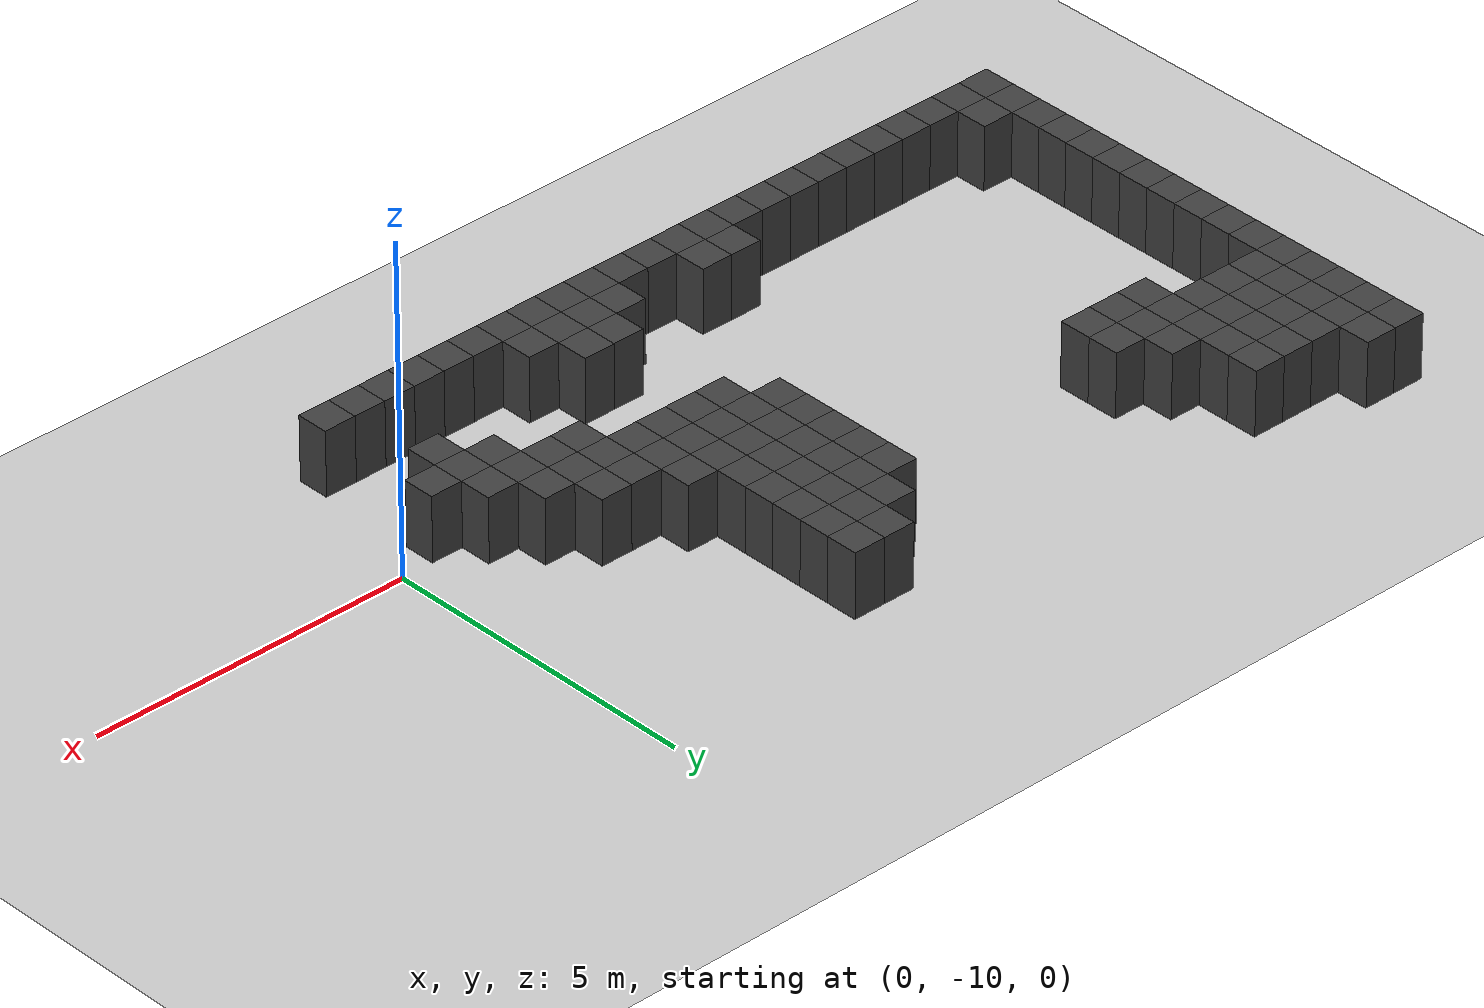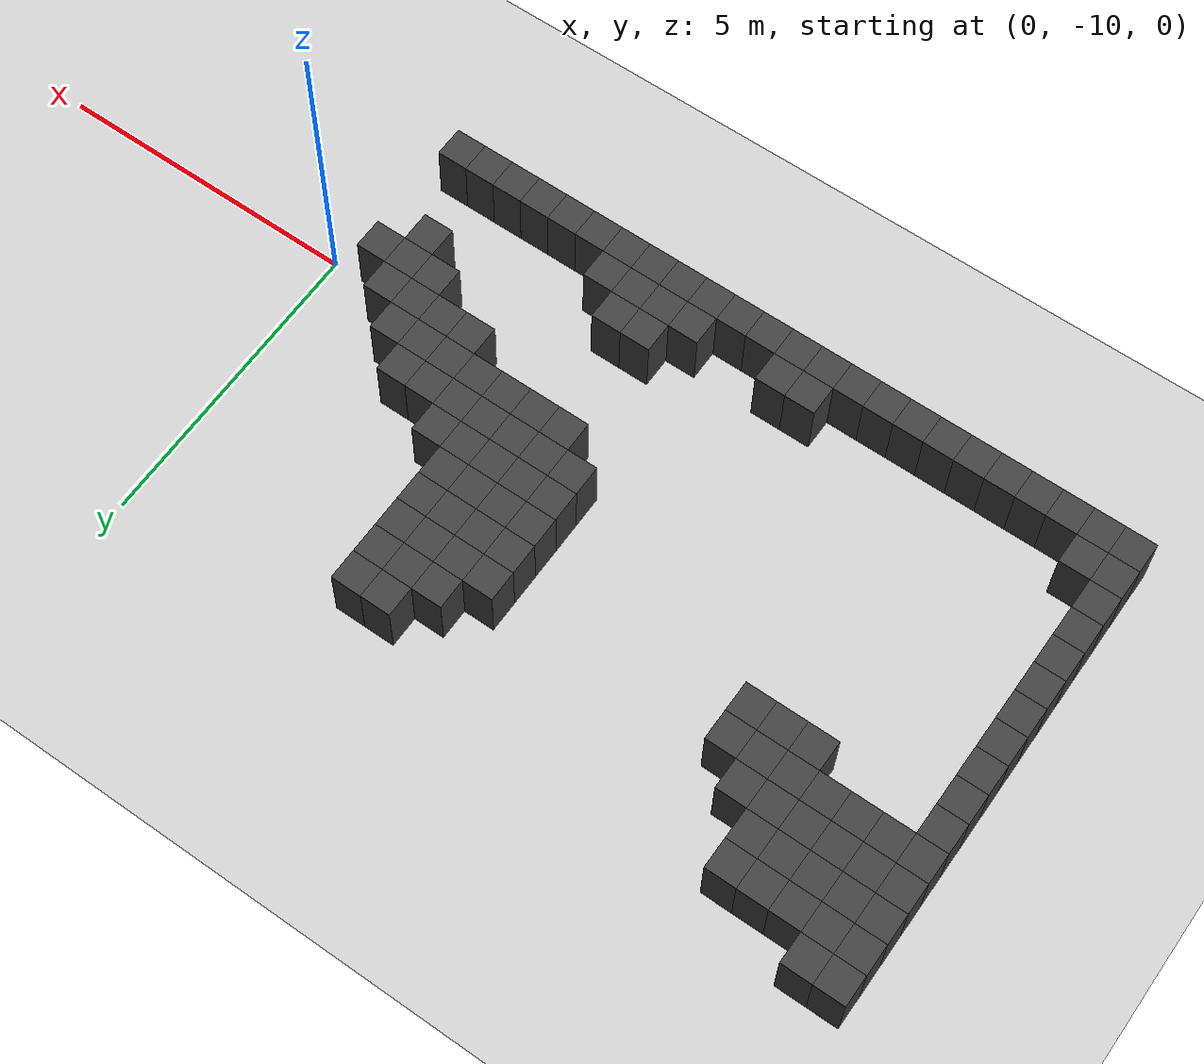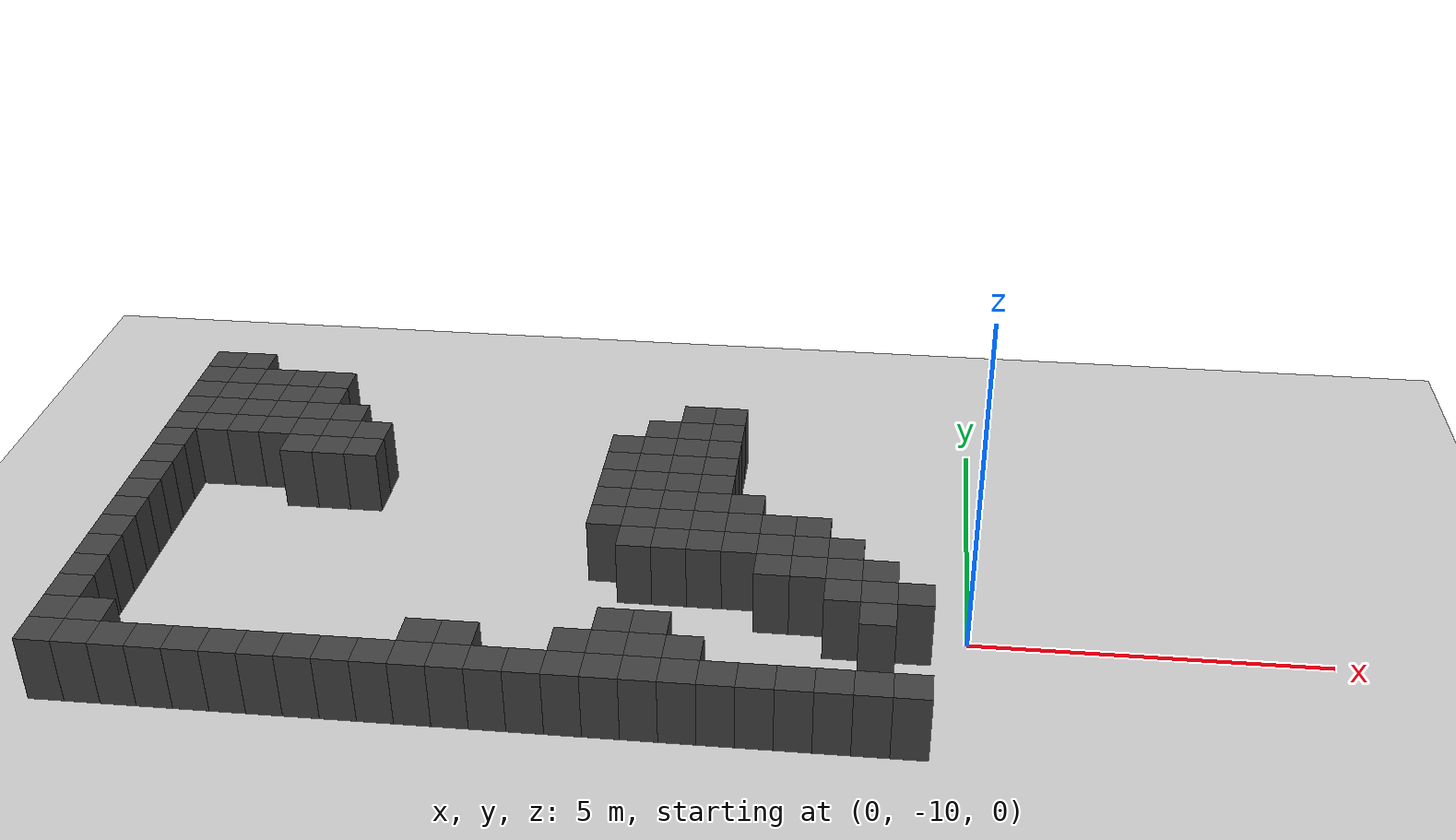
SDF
<sdf version="1.7">
 <world name="map_9152">
  <model name="ground_plane">
   <static>true</static>
   <link name="link">
    <collision name="collision">
     <geometry><plane><normal>0 0 1</normal><size>200 200</size></plane></geometry>
    </collision>
    <visual name="visual">
     <geometry><plane><normal>0 0 1</normal><size>200 200</size></plane></geometry>
     <material><ambient>0.8 0.8 0.8 1</ambient><diffuse>0.8 0.8 0.8 1</diffuse></material>
    </visual>
   </link>
  </model>
  <model name="maze_environment">
   <static>true</static>
   <link name="wall_527">
    <pose>-12.250 -4.750 0.500 0 0 0</pose>
    <collision name="col"><geometry><box><size>0.5 0.5 1.0</size></box></geometry></collision>
    <visual name="vis">
     <geometry><box><size>0.5 0.5 1.0</size></box></geometry>
     <material><ambient>0.15 0.15 0.15 1</ambient><diffuse>0.25 0.25 0.25 1</diffuse></material>
    </visual>
   </link>
   <link name="wall_528">
    <pose>-11.750 -4.750 0.500 0 0 0</pose>
    <collision name="col"><geometry><box><size>0.5 0.5 1.0</size></box></geometry></collision>
    <visual name="vis">
     <geometry><box><size>0.5 0.5 1.0</size></box></geometry>
     <material><ambient>0.15 0.15 0.15 1</ambient><diffuse>0.25 0.25 0.25 1</diffuse></material>
    </visual>
   </link>
   <link name="wall_542">
    <pose>-12.250 -5.250 0.500 0 0 0</pose>
    <collision name="col"><geometry><box><size>0.5 0.5 1.0</size></box></geometry></collision>
    <visual name="vis">
     <geometry><box><size>0.5 0.5 1.0</size></box></geometry>
     <material><ambient>0.15 0.15 0.15 1</ambient><diffuse>0.25 0.25 0.25 1</diffuse></material>
    </visual>
   </link>
   <link name="wall_543">
    <pose>-11.750 -5.250 0.500 0 0 0</pose>
    <collision name="col"><geometry><box><size>0.5 0.5 1.0</size></box></geometry></collision>
    <visual name="vis">
     <geometry><box><size>0.5 0.5 1.0</size></box></geometry>
     <material><ambient>0.15 0.15 0.15 1</ambient><diffuse>0.25 0.25 0.25 1</diffuse></material>
    </visual>
   </link>
   <link name="wall_544">
    <pose>-11.250 -5.250 0.500 0 0 0</pose>
    <collision name="col"><geometry><box><size>0.5 0.5 1.0</size></box></geometry></collision>
    <visual name="vis">
     <geometry><box><size>0.5 0.5 1.0</size></box></geometry>
     <material><ambient>0.15 0.15 0.15 1</ambient><diffuse>0.25 0.25 0.25 1</diffuse></material>
    </visual>
   </link>
   <link name="wall_545">
    <pose>-10.750 -5.250 0.500 0 0 0</pose>
    <collision name="col"><geometry><box><size>0.5 0.5 1.0</size></box></geometry></collision>
    <visual name="vis">
     <geometry><box><size>0.5 0.5 1.0</size></box></geometry>
     <material><ambient>0.15 0.15 0.15 1</ambient><diffuse>0.25 0.25 0.25 1</diffuse></material>
    </visual>
   </link>
   <link name="wall_546">
    <pose>-10.250 -5.250 0.500 0 0 0</pose>
    <collision name="col"><geometry><box><size>0.5 0.5 1.0</size></box></geometry></collision>
    <visual name="vis">
     <geometry><box><size>0.5 0.5 1.0</size></box></geometry>
     <material><ambient>0.15 0.15 0.15 1</ambient><diffuse>0.25 0.25 0.25 1</diffuse></material>
    </visual>
   </link>
   <link name="wall_559">
    <pose>-12.250 -5.750 0.500 0 0 0</pose>
    <collision name="col"><geometry><box><size>0.5 0.5 1.0</size></box></geometry></collision>
    <visual name="vis">
     <geometry><box><size>0.5 0.5 1.0</size></box></geometry>
     <material><ambient>0.15 0.15 0.15 1</ambient><diffuse>0.25 0.25 0.25 1</diffuse></material>
    </visual>
   </link>
   <link name="wall_560">
    <pose>-11.750 -5.750 0.500 0 0 0</pose>
    <collision name="col"><geometry><box><size>0.5 0.5 1.0</size></box></geometry></collision>
    <visual name="vis">
     <geometry><box><size>0.5 0.5 1.0</size></box></geometry>
     <material><ambient>0.15 0.15 0.15 1</ambient><diffuse>0.25 0.25 0.25 1</diffuse></material>
    </visual>
   </link>
   <link name="wall_561">
    <pose>-11.250 -5.750 0.500 0 0 0</pose>
    <collision name="col"><geometry><box><size>0.5 0.5 1.0</size></box></geometry></collision>
    <visual name="vis">
     <geometry><box><size>0.5 0.5 1.0</size></box></geometry>
     <material><ambient>0.15 0.15 0.15 1</ambient><diffuse>0.25 0.25 0.25 1</diffuse></material>
    </visual>
   </link>
   <link name="wall_562">
    <pose>-10.750 -5.750 0.500 0 0 0</pose>
    <collision name="col"><geometry><box><size>0.5 0.5 1.0</size></box></geometry></collision>
    <visual name="vis">
     <geometry><box><size>0.5 0.5 1.0</size></box></geometry>
     <material><ambient>0.15 0.15 0.15 1</ambient><diffuse>0.25 0.25 0.25 1</diffuse></material>
    </visual>
   </link>
   <link name="wall_563">
    <pose>-10.250 -5.750 0.500 0 0 0</pose>
    <collision name="col"><geometry><box><size>0.5 0.5 1.0</size></box></geometry></collision>
    <visual name="vis">
     <geometry><box><size>0.5 0.5 1.0</size></box></geometry>
     <material><ambient>0.15 0.15 0.15 1</ambient><diffuse>0.25 0.25 0.25 1</diffuse></material>
    </visual>
   </link>
   <link name="wall_564">
    <pose>-4.250 -5.750 0.500 0 0 0</pose>
    <collision name="col"><geometry><box><size>0.5 0.5 1.0</size></box></geometry></collision>
    <visual name="vis">
     <geometry><box><size>0.5 0.5 1.0</size></box></geometry>
     <material><ambient>0.15 0.15 0.15 1</ambient><diffuse>0.25 0.25 0.25 1</diffuse></material>
    </visual>
   </link>
   <link name="wall_565">
    <pose>-3.750 -5.750 0.500 0 0 0</pose>
    <collision name="col"><geometry><box><size>0.5 0.5 1.0</size></box></geometry></collision>
    <visual name="vis">
     <geometry><box><size>0.5 0.5 1.0</size></box></geometry>
     <material><ambient>0.15 0.15 0.15 1</ambient><diffuse>0.25 0.25 0.25 1</diffuse></material>
    </visual>
   </link>
   <link name="wall_576">
    <pose>-12.250 -6.250 0.500 0 0 0</pose>
    <collision name="col"><geometry><box><size>0.5 0.5 1.0</size></box></geometry></collision>
    <visual name="vis">
     <geometry><box><size>0.5 0.5 1.0</size></box></geometry>
     <material><ambient>0.15 0.15 0.15 1</ambient><diffuse>0.25 0.25 0.25 1</diffuse></material>
    </visual>
   </link>
   <link name="wall_577">
    <pose>-11.750 -6.250 0.500 0 0 0</pose>
    <collision name="col"><geometry><box><size>0.5 0.5 1.0</size></box></geometry></collision>
    <visual name="vis">
     <geometry><box><size>0.5 0.5 1.0</size></box></geometry>
     <material><ambient>0.15 0.15 0.15 1</ambient><diffuse>0.25 0.25 0.25 1</diffuse></material>
    </visual>
   </link>
   <link name="wall_578">
    <pose>-11.250 -6.250 0.500 0 0 0</pose>
    <collision name="col"><geometry><box><size>0.5 0.5 1.0</size></box></geometry></collision>
    <visual name="vis">
     <geometry><box><size>0.5 0.5 1.0</size></box></geometry>
     <material><ambient>0.15 0.15 0.15 1</ambient><diffuse>0.25 0.25 0.25 1</diffuse></material>
    </visual>
   </link>
   <link name="wall_579">
    <pose>-10.750 -6.250 0.500 0 0 0</pose>
    <collision name="col"><geometry><box><size>0.5 0.5 1.0</size></box></geometry></collision>
    <visual name="vis">
     <geometry><box><size>0.5 0.5 1.0</size></box></geometry>
     <material><ambient>0.15 0.15 0.15 1</ambient><diffuse>0.25 0.25 0.25 1</diffuse></material>
    </visual>
   </link>
   <link name="wall_580">
    <pose>-10.250 -6.250 0.500 0 0 0</pose>
    <collision name="col"><geometry><box><size>0.5 0.5 1.0</size></box></geometry></collision>
    <visual name="vis">
     <geometry><box><size>0.5 0.5 1.0</size></box></geometry>
     <material><ambient>0.15 0.15 0.15 1</ambient><diffuse>0.25 0.25 0.25 1</diffuse></material>
    </visual>
   </link>
   <link name="wall_581">
    <pose>-9.750 -6.250 0.500 0 0 0</pose>
    <collision name="col"><geometry><box><size>0.5 0.5 1.0</size></box></geometry></collision>
    <visual name="vis">
     <geometry><box><size>0.5 0.5 1.0</size></box></geometry>
     <material><ambient>0.15 0.15 0.15 1</ambient><diffuse>0.25 0.25 0.25 1</diffuse></material>
    </visual>
   </link>
   <link name="wall_582">
    <pose>-4.750 -6.250 0.500 0 0 0</pose>
    <collision name="col"><geometry><box><size>0.5 0.5 1.0</size></box></geometry></collision>
    <visual name="vis">
     <geometry><box><size>0.5 0.5 1.0</size></box></geometry>
     <material><ambient>0.15 0.15 0.15 1</ambient><diffuse>0.25 0.25 0.25 1</diffuse></material>
    </visual>
   </link>
   <link name="wall_583">
    <pose>-4.250 -6.250 0.500 0 0 0</pose>
    <collision name="col"><geometry><box><size>0.5 0.5 1.0</size></box></geometry></collision>
    <visual name="vis">
     <geometry><box><size>0.5 0.5 1.0</size></box></geometry>
     <material><ambient>0.15 0.15 0.15 1</ambient><diffuse>0.25 0.25 0.25 1</diffuse></material>
    </visual>
   </link>
   <link name="wall_584">
    <pose>-3.750 -6.250 0.500 0 0 0</pose>
    <collision name="col"><geometry><box><size>0.5 0.5 1.0</size></box></geometry></collision>
    <visual name="vis">
     <geometry><box><size>0.5 0.5 1.0</size></box></geometry>
     <material><ambient>0.15 0.15 0.15 1</ambient><diffuse>0.25 0.25 0.25 1</diffuse></material>
    </visual>
   </link>
   <link name="wall_595">
    <pose>-12.250 -6.750 0.500 0 0 0</pose>
    <collision name="col"><geometry><box><size>0.5 0.5 1.0</size></box></geometry></collision>
    <visual name="vis">
     <geometry><box><size>0.5 0.5 1.0</size></box></geometry>
     <material><ambient>0.15 0.15 0.15 1</ambient><diffuse>0.25 0.25 0.25 1</diffuse></material>
    </visual>
   </link>
   <link name="wall_596">
    <pose>-11.750 -6.750 0.500 0 0 0</pose>
    <collision name="col"><geometry><box><size>0.5 0.5 1.0</size></box></geometry></collision>
    <visual name="vis">
     <geometry><box><size>0.5 0.5 1.0</size></box></geometry>
     <material><ambient>0.15 0.15 0.15 1</ambient><diffuse>0.25 0.25 0.25 1</diffuse></material>
    </visual>
   </link>
   <link name="wall_597">
    <pose>-11.250 -6.750 0.500 0 0 0</pose>
    <collision name="col"><geometry><box><size>0.5 0.5 1.0</size></box></geometry></collision>
    <visual name="vis">
     <geometry><box><size>0.5 0.5 1.0</size></box></geometry>
     <material><ambient>0.15 0.15 0.15 1</ambient><diffuse>0.25 0.25 0.25 1</diffuse></material>
    </visual>
   </link>
   <link name="wall_598">
    <pose>-10.750 -6.750 0.500 0 0 0</pose>
    <collision name="col"><geometry><box><size>0.5 0.5 1.0</size></box></geometry></collision>
    <visual name="vis">
     <geometry><box><size>0.5 0.5 1.0</size></box></geometry>
     <material><ambient>0.15 0.15 0.15 1</ambient><diffuse>0.25 0.25 0.25 1</diffuse></material>
    </visual>
   </link>
   <link name="wall_599">
    <pose>-10.250 -6.750 0.500 0 0 0</pose>
    <collision name="col"><geometry><box><size>0.5 0.5 1.0</size></box></geometry></collision>
    <visual name="vis">
     <geometry><box><size>0.5 0.5 1.0</size></box></geometry>
     <material><ambient>0.15 0.15 0.15 1</ambient><diffuse>0.25 0.25 0.25 1</diffuse></material>
    </visual>
   </link>
   <link name="wall_600">
    <pose>-9.750 -6.750 0.500 0 0 0</pose>
    <collision name="col"><geometry><box><size>0.5 0.5 1.0</size></box></geometry></collision>
    <visual name="vis">
     <geometry><box><size>0.5 0.5 1.0</size></box></geometry>
     <material><ambient>0.15 0.15 0.15 1</ambient><diffuse>0.25 0.25 0.25 1</diffuse></material>
    </visual>
   </link>
   <link name="wall_601">
    <pose>-9.250 -6.750 0.500 0 0 0</pose>
    <collision name="col"><geometry><box><size>0.5 0.5 1.0</size></box></geometry></collision>
    <visual name="vis">
     <geometry><box><size>0.5 0.5 1.0</size></box></geometry>
     <material><ambient>0.15 0.15 0.15 1</ambient><diffuse>0.25 0.25 0.25 1</diffuse></material>
    </visual>
   </link>
   <link name="wall_602">
    <pose>-5.250 -6.750 0.500 0 0 0</pose>
    <collision name="col"><geometry><box><size>0.5 0.5 1.0</size></box></geometry></collision>
    <visual name="vis">
     <geometry><box><size>0.5 0.5 1.0</size></box></geometry>
     <material><ambient>0.15 0.15 0.15 1</ambient><diffuse>0.25 0.25 0.25 1</diffuse></material>
    </visual>
   </link>
   <link name="wall_603">
    <pose>-4.750 -6.750 0.500 0 0 0</pose>
    <collision name="col"><geometry><box><size>0.5 0.5 1.0</size></box></geometry></collision>
    <visual name="vis">
     <geometry><box><size>0.5 0.5 1.0</size></box></geometry>
     <material><ambient>0.15 0.15 0.15 1</ambient><diffuse>0.25 0.25 0.25 1</diffuse></material>
    </visual>
   </link>
   <link name="wall_604">
    <pose>-4.250 -6.750 0.500 0 0 0</pose>
    <collision name="col"><geometry><box><size>0.5 0.5 1.0</size></box></geometry></collision>
    <visual name="vis">
     <geometry><box><size>0.5 0.5 1.0</size></box></geometry>
     <material><ambient>0.15 0.15 0.15 1</ambient><diffuse>0.25 0.25 0.25 1</diffuse></material>
    </visual>
   </link>
   <link name="wall_605">
    <pose>-3.750 -6.750 0.500 0 0 0</pose>
    <collision name="col"><geometry><box><size>0.5 0.5 1.0</size></box></geometry></collision>
    <visual name="vis">
     <geometry><box><size>0.5 0.5 1.0</size></box></geometry>
     <material><ambient>0.15 0.15 0.15 1</ambient><diffuse>0.25 0.25 0.25 1</diffuse></material>
    </visual>
   </link>
   <link name="wall_616">
    <pose>-12.250 -7.250 0.500 0 0 0</pose>
    <collision name="col"><geometry><box><size>0.5 0.5 1.0</size></box></geometry></collision>
    <visual name="vis">
     <geometry><box><size>0.5 0.5 1.0</size></box></geometry>
     <material><ambient>0.15 0.15 0.15 1</ambient><diffuse>0.25 0.25 0.25 1</diffuse></material>
    </visual>
   </link>
   <link name="wall_617">
    <pose>-10.250 -7.250 0.500 0 0 0</pose>
    <collision name="col"><geometry><box><size>0.5 0.5 1.0</size></box></geometry></collision>
    <visual name="vis">
     <geometry><box><size>0.5 0.5 1.0</size></box></geometry>
     <material><ambient>0.15 0.15 0.15 1</ambient><diffuse>0.25 0.25 0.25 1</diffuse></material>
    </visual>
   </link>
   <link name="wall_618">
    <pose>-9.750 -7.250 0.500 0 0 0</pose>
    <collision name="col"><geometry><box><size>0.5 0.5 1.0</size></box></geometry></collision>
    <visual name="vis">
     <geometry><box><size>0.5 0.5 1.0</size></box></geometry>
     <material><ambient>0.15 0.15 0.15 1</ambient><diffuse>0.25 0.25 0.25 1</diffuse></material>
    </visual>
   </link>
   <link name="wall_619">
    <pose>-9.250 -7.250 0.500 0 0 0</pose>
    <collision name="col"><geometry><box><size>0.5 0.5 1.0</size></box></geometry></collision>
    <visual name="vis">
     <geometry><box><size>0.5 0.5 1.0</size></box></geometry>
     <material><ambient>0.15 0.15 0.15 1</ambient><diffuse>0.25 0.25 0.25 1</diffuse></material>
    </visual>
   </link>
   <link name="wall_620">
    <pose>-5.250 -7.250 0.500 0 0 0</pose>
    <collision name="col"><geometry><box><size>0.5 0.5 1.0</size></box></geometry></collision>
    <visual name="vis">
     <geometry><box><size>0.5 0.5 1.0</size></box></geometry>
     <material><ambient>0.15 0.15 0.15 1</ambient><diffuse>0.25 0.25 0.25 1</diffuse></material>
    </visual>
   </link>
   <link name="wall_621">
    <pose>-4.750 -7.250 0.500 0 0 0</pose>
    <collision name="col"><geometry><box><size>0.5 0.5 1.0</size></box></geometry></collision>
    <visual name="vis">
     <geometry><box><size>0.5 0.5 1.0</size></box></geometry>
     <material><ambient>0.15 0.15 0.15 1</ambient><diffuse>0.25 0.25 0.25 1</diffuse></material>
    </visual>
   </link>
   <link name="wall_622">
    <pose>-4.250 -7.250 0.500 0 0 0</pose>
    <collision name="col"><geometry><box><size>0.5 0.5 1.0</size></box></geometry></collision>
    <visual name="vis">
     <geometry><box><size>0.5 0.5 1.0</size></box></geometry>
     <material><ambient>0.15 0.15 0.15 1</ambient><diffuse>0.25 0.25 0.25 1</diffuse></material>
    </visual>
   </link>
   <link name="wall_623">
    <pose>-3.750 -7.250 0.500 0 0 0</pose>
    <collision name="col"><geometry><box><size>0.5 0.5 1.0</size></box></geometry></collision>
    <visual name="vis">
     <geometry><box><size>0.5 0.5 1.0</size></box></geometry>
     <material><ambient>0.15 0.15 0.15 1</ambient><diffuse>0.25 0.25 0.25 1</diffuse></material>
    </visual>
   </link>
   <link name="wall_635">
    <pose>-12.250 -7.750 0.500 0 0 0</pose>
    <collision name="col"><geometry><box><size>0.5 0.5 1.0</size></box></geometry></collision>
    <visual name="vis">
     <geometry><box><size>0.5 0.5 1.0</size></box></geometry>
     <material><ambient>0.15 0.15 0.15 1</ambient><diffuse>0.25 0.25 0.25 1</diffuse></material>
    </visual>
   </link>
   <link name="wall_636">
    <pose>-5.250 -7.750 0.500 0 0 0</pose>
    <collision name="col"><geometry><box><size>0.5 0.5 1.0</size></box></geometry></collision>
    <visual name="vis">
     <geometry><box><size>0.5 0.5 1.0</size></box></geometry>
     <material><ambient>0.15 0.15 0.15 1</ambient><diffuse>0.25 0.25 0.25 1</diffuse></material>
    </visual>
   </link>
   <link name="wall_637">
    <pose>-4.750 -7.750 0.500 0 0 0</pose>
    <collision name="col"><geometry><box><size>0.5 0.5 1.0</size></box></geometry></collision>
    <visual name="vis">
     <geometry><box><size>0.5 0.5 1.0</size></box></geometry>
     <material><ambient>0.15 0.15 0.15 1</ambient><diffuse>0.25 0.25 0.25 1</diffuse></material>
    </visual>
   </link>
   <link name="wall_638">
    <pose>-4.250 -7.750 0.500 0 0 0</pose>
    <collision name="col"><geometry><box><size>0.5 0.5 1.0</size></box></geometry></collision>
    <visual name="vis">
     <geometry><box><size>0.5 0.5 1.0</size></box></geometry>
     <material><ambient>0.15 0.15 0.15 1</ambient><diffuse>0.25 0.25 0.25 1</diffuse></material>
    </visual>
   </link>
   <link name="wall_639">
    <pose>-3.750 -7.750 0.500 0 0 0</pose>
    <collision name="col"><geometry><box><size>0.5 0.5 1.0</size></box></geometry></collision>
    <visual name="vis">
     <geometry><box><size>0.5 0.5 1.0</size></box></geometry>
     <material><ambient>0.15 0.15 0.15 1</ambient><diffuse>0.25 0.25 0.25 1</diffuse></material>
    </visual>
   </link>
   <link name="wall_649">
    <pose>-12.250 -8.250 0.500 0 0 0</pose>
    <collision name="col"><geometry><box><size>0.5 0.5 1.0</size></box></geometry></collision>
    <visual name="vis">
     <geometry><box><size>0.5 0.5 1.0</size></box></geometry>
     <material><ambient>0.15 0.15 0.15 1</ambient><diffuse>0.25 0.25 0.25 1</diffuse></material>
    </visual>
   </link>
   <link name="wall_650">
    <pose>-5.250 -8.250 0.500 0 0 0</pose>
    <collision name="col"><geometry><box><size>0.5 0.5 1.0</size></box></geometry></collision>
    <visual name="vis">
     <geometry><box><size>0.5 0.5 1.0</size></box></geometry>
     <material><ambient>0.15 0.15 0.15 1</ambient><diffuse>0.25 0.25 0.25 1</diffuse></material>
    </visual>
   </link>
   <link name="wall_651">
    <pose>-4.750 -8.250 0.500 0 0 0</pose>
    <collision name="col"><geometry><box><size>0.5 0.5 1.0</size></box></geometry></collision>
    <visual name="vis">
     <geometry><box><size>0.5 0.5 1.0</size></box></geometry>
     <material><ambient>0.15 0.15 0.15 1</ambient><diffuse>0.25 0.25 0.25 1</diffuse></material>
    </visual>
   </link>
   <link name="wall_652">
    <pose>-4.250 -8.250 0.500 0 0 0</pose>
    <collision name="col"><geometry><box><size>0.5 0.5 1.0</size></box></geometry></collision>
    <visual name="vis">
     <geometry><box><size>0.5 0.5 1.0</size></box></geometry>
     <material><ambient>0.15 0.15 0.15 1</ambient><diffuse>0.25 0.25 0.25 1</diffuse></material>
    </visual>
   </link>
   <link name="wall_653">
    <pose>-3.750 -8.250 0.500 0 0 0</pose>
    <collision name="col"><geometry><box><size>0.5 0.5 1.0</size></box></geometry></collision>
    <visual name="vis">
     <geometry><box><size>0.5 0.5 1.0</size></box></geometry>
     <material><ambient>0.15 0.15 0.15 1</ambient><diffuse>0.25 0.25 0.25 1</diffuse></material>
    </visual>
   </link>
   <link name="wall_654">
    <pose>-3.250 -8.250 0.500 0 0 0</pose>
    <collision name="col"><geometry><box><size>0.5 0.5 1.0</size></box></geometry></collision>
    <visual name="vis">
     <geometry><box><size>0.5 0.5 1.0</size></box></geometry>
     <material><ambient>0.15 0.15 0.15 1</ambient><diffuse>0.25 0.25 0.25 1</diffuse></material>
    </visual>
   </link>
   <link name="wall_663">
    <pose>-12.250 -8.750 0.500 0 0 0</pose>
    <collision name="col"><geometry><box><size>0.5 0.5 1.0</size></box></geometry></collision>
    <visual name="vis">
     <geometry><box><size>0.5 0.5 1.0</size></box></geometry>
     <material><ambient>0.15 0.15 0.15 1</ambient><diffuse>0.25 0.25 0.25 1</diffuse></material>
    </visual>
   </link>
   <link name="wall_664">
    <pose>-5.250 -8.750 0.500 0 0 0</pose>
    <collision name="col"><geometry><box><size>0.5 0.5 1.0</size></box></geometry></collision>
    <visual name="vis">
     <geometry><box><size>0.5 0.5 1.0</size></box></geometry>
     <material><ambient>0.15 0.15 0.15 1</ambient><diffuse>0.25 0.25 0.25 1</diffuse></material>
    </visual>
   </link>
   <link name="wall_665">
    <pose>-4.750 -8.750 0.500 0 0 0</pose>
    <collision name="col"><geometry><box><size>0.5 0.5 1.0</size></box></geometry></collision>
    <visual name="vis">
     <geometry><box><size>0.5 0.5 1.0</size></box></geometry>
     <material><ambient>0.15 0.15 0.15 1</ambient><diffuse>0.25 0.25 0.25 1</diffuse></material>
    </visual>
   </link>
   <link name="wall_666">
    <pose>-4.250 -8.750 0.500 0 0 0</pose>
    <collision name="col"><geometry><box><size>0.5 0.5 1.0</size></box></geometry></collision>
    <visual name="vis">
     <geometry><box><size>0.5 0.5 1.0</size></box></geometry>
     <material><ambient>0.15 0.15 0.15 1</ambient><diffuse>0.25 0.25 0.25 1</diffuse></material>
    </visual>
   </link>
   <link name="wall_667">
    <pose>-3.750 -8.750 0.500 0 0 0</pose>
    <collision name="col"><geometry><box><size>0.5 0.5 1.0</size></box></geometry></collision>
    <visual name="vis">
     <geometry><box><size>0.5 0.5 1.0</size></box></geometry>
     <material><ambient>0.15 0.15 0.15 1</ambient><diffuse>0.25 0.25 0.25 1</diffuse></material>
    </visual>
   </link>
   <link name="wall_668">
    <pose>-3.250 -8.750 0.500 0 0 0</pose>
    <collision name="col"><geometry><box><size>0.5 0.5 1.0</size></box></geometry></collision>
    <visual name="vis">
     <geometry><box><size>0.5 0.5 1.0</size></box></geometry>
     <material><ambient>0.15 0.15 0.15 1</ambient><diffuse>0.25 0.25 0.25 1</diffuse></material>
    </visual>
   </link>
   <link name="wall_669">
    <pose>-2.750 -8.750 0.500 0 0 0</pose>
    <collision name="col"><geometry><box><size>0.5 0.5 1.0</size></box></geometry></collision>
    <visual name="vis">
     <geometry><box><size>0.5 0.5 1.0</size></box></geometry>
     <material><ambient>0.15 0.15 0.15 1</ambient><diffuse>0.25 0.25 0.25 1</diffuse></material>
    </visual>
   </link>
   <link name="wall_670">
    <pose>-2.250 -8.750 0.500 0 0 0</pose>
    <collision name="col"><geometry><box><size>0.5 0.5 1.0</size></box></geometry></collision>
    <visual name="vis">
     <geometry><box><size>0.5 0.5 1.0</size></box></geometry>
     <material><ambient>0.15 0.15 0.15 1</ambient><diffuse>0.25 0.25 0.25 1</diffuse></material>
    </visual>
   </link>
   <link name="wall_677">
    <pose>-12.250 -9.250 0.500 0 0 0</pose>
    <collision name="col"><geometry><box><size>0.5 0.5 1.0</size></box></geometry></collision>
    <visual name="vis">
     <geometry><box><size>0.5 0.5 1.0</size></box></geometry>
     <material><ambient>0.15 0.15 0.15 1</ambient><diffuse>0.25 0.25 0.25 1</diffuse></material>
    </visual>
   </link>
   <link name="wall_678">
    <pose>-4.750 -9.250 0.500 0 0 0</pose>
    <collision name="col"><geometry><box><size>0.5 0.5 1.0</size></box></geometry></collision>
    <visual name="vis">
     <geometry><box><size>0.5 0.5 1.0</size></box></geometry>
     <material><ambient>0.15 0.15 0.15 1</ambient><diffuse>0.25 0.25 0.25 1</diffuse></material>
    </visual>
   </link>
   <link name="wall_679">
    <pose>-4.250 -9.250 0.500 0 0 0</pose>
    <collision name="col"><geometry><box><size>0.5 0.5 1.0</size></box></geometry></collision>
    <visual name="vis">
     <geometry><box><size>0.5 0.5 1.0</size></box></geometry>
     <material><ambient>0.15 0.15 0.15 1</ambient><diffuse>0.25 0.25 0.25 1</diffuse></material>
    </visual>
   </link>
   <link name="wall_680">
    <pose>-3.750 -9.250 0.500 0 0 0</pose>
    <collision name="col"><geometry><box><size>0.5 0.5 1.0</size></box></geometry></collision>
    <visual name="vis">
     <geometry><box><size>0.5 0.5 1.0</size></box></geometry>
     <material><ambient>0.15 0.15 0.15 1</ambient><diffuse>0.25 0.25 0.25 1</diffuse></material>
    </visual>
   </link>
   <link name="wall_681">
    <pose>-3.250 -9.250 0.500 0 0 0</pose>
    <collision name="col"><geometry><box><size>0.5 0.5 1.0</size></box></geometry></collision>
    <visual name="vis">
     <geometry><box><size>0.5 0.5 1.0</size></box></geometry>
     <material><ambient>0.15 0.15 0.15 1</ambient><diffuse>0.25 0.25 0.25 1</diffuse></material>
    </visual>
   </link>
   <link name="wall_682">
    <pose>-2.750 -9.250 0.500 0 0 0</pose>
    <collision name="col"><geometry><box><size>0.5 0.5 1.0</size></box></geometry></collision>
    <visual name="vis">
     <geometry><box><size>0.5 0.5 1.0</size></box></geometry>
     <material><ambient>0.15 0.15 0.15 1</ambient><diffuse>0.25 0.25 0.25 1</diffuse></material>
    </visual>
   </link>
   <link name="wall_683">
    <pose>-2.250 -9.250 0.500 0 0 0</pose>
    <collision name="col"><geometry><box><size>0.5 0.5 1.0</size></box></geometry></collision>
    <visual name="vis">
     <geometry><box><size>0.5 0.5 1.0</size></box></geometry>
     <material><ambient>0.15 0.15 0.15 1</ambient><diffuse>0.25 0.25 0.25 1</diffuse></material>
    </visual>
   </link>
   <link name="wall_684">
    <pose>-1.750 -9.250 0.500 0 0 0</pose>
    <collision name="col"><geometry><box><size>0.5 0.5 1.0</size></box></geometry></collision>
    <visual name="vis">
     <geometry><box><size>0.5 0.5 1.0</size></box></geometry>
     <material><ambient>0.15 0.15 0.15 1</ambient><diffuse>0.25 0.25 0.25 1</diffuse></material>
    </visual>
   </link>
   <link name="wall_692">
    <pose>-12.250 -9.750 0.500 0 0 0</pose>
    <collision name="col"><geometry><box><size>0.5 0.5 1.0</size></box></geometry></collision>
    <visual name="vis">
     <geometry><box><size>0.5 0.5 1.0</size></box></geometry>
     <material><ambient>0.15 0.15 0.15 1</ambient><diffuse>0.25 0.25 0.25 1</diffuse></material>
    </visual>
   </link>
   <link name="wall_693">
    <pose>-2.750 -9.750 0.500 0 0 0</pose>
    <collision name="col"><geometry><box><size>0.5 0.5 1.0</size></box></geometry></collision>
    <visual name="vis">
     <geometry><box><size>0.5 0.5 1.0</size></box></geometry>
     <material><ambient>0.15 0.15 0.15 1</ambient><diffuse>0.25 0.25 0.25 1</diffuse></material>
    </visual>
   </link>
   <link name="wall_694">
    <pose>-2.250 -9.750 0.500 0 0 0</pose>
    <collision name="col"><geometry><box><size>0.5 0.5 1.0</size></box></geometry></collision>
    <visual name="vis">
     <geometry><box><size>0.5 0.5 1.0</size></box></geometry>
     <material><ambient>0.15 0.15 0.15 1</ambient><diffuse>0.25 0.25 0.25 1</diffuse></material>
    </visual>
   </link>
   <link name="wall_695">
    <pose>-1.750 -9.750 0.500 0 0 0</pose>
    <collision name="col"><geometry><box><size>0.5 0.5 1.0</size></box></geometry></collision>
    <visual name="vis">
     <geometry><box><size>0.5 0.5 1.0</size></box></geometry>
     <material><ambient>0.15 0.15 0.15 1</ambient><diffuse>0.25 0.25 0.25 1</diffuse></material>
    </visual>
   </link>
   <link name="wall_696">
    <pose>-1.250 -9.750 0.500 0 0 0</pose>
    <collision name="col"><geometry><box><size>0.5 0.5 1.0</size></box></geometry></collision>
    <visual name="vis">
     <geometry><box><size>0.5 0.5 1.0</size></box></geometry>
     <material><ambient>0.15 0.15 0.15 1</ambient><diffuse>0.25 0.25 0.25 1</diffuse></material>
    </visual>
   </link>
   <link name="wall_706">
    <pose>-12.250 -10.250 0.500 0 0 0</pose>
    <collision name="col"><geometry><box><size>0.5 0.5 1.0</size></box></geometry></collision>
    <visual name="vis">
     <geometry><box><size>0.5 0.5 1.0</size></box></geometry>
     <material><ambient>0.15 0.15 0.15 1</ambient><diffuse>0.25 0.25 0.25 1</diffuse></material>
    </visual>
   </link>
   <link name="wall_707">
    <pose>-1.750 -10.250 0.500 0 0 0</pose>
    <collision name="col"><geometry><box><size>0.5 0.5 1.0</size></box></geometry></collision>
    <visual name="vis">
     <geometry><box><size>0.5 0.5 1.0</size></box></geometry>
     <material><ambient>0.15 0.15 0.15 1</ambient><diffuse>0.25 0.25 0.25 1</diffuse></material>
    </visual>
   </link>
   <link name="wall_708">
    <pose>-1.250 -10.250 0.500 0 0 0</pose>
    <collision name="col"><geometry><box><size>0.5 0.5 1.0</size></box></geometry></collision>
    <visual name="vis">
     <geometry><box><size>0.5 0.5 1.0</size></box></geometry>
     <material><ambient>0.15 0.15 0.15 1</ambient><diffuse>0.25 0.25 0.25 1</diffuse></material>
    </visual>
   </link>
   <link name="wall_709">
    <pose>-0.750 -10.250 0.500 0 0 0</pose>
    <collision name="col"><geometry><box><size>0.5 0.5 1.0</size></box></geometry></collision>
    <visual name="vis">
     <geometry><box><size>0.5 0.5 1.0</size></box></geometry>
     <material><ambient>0.15 0.15 0.15 1</ambient><diffuse>0.25 0.25 0.25 1</diffuse></material>
    </visual>
   </link>
   <link name="wall_721">
    <pose>-12.250 -10.750 0.500 0 0 0</pose>
    <collision name="col"><geometry><box><size>0.5 0.5 1.0</size></box></geometry></collision>
    <visual name="vis">
     <geometry><box><size>0.5 0.5 1.0</size></box></geometry>
     <material><ambient>0.15 0.15 0.15 1</ambient><diffuse>0.25 0.25 0.25 1</diffuse></material>
    </visual>
   </link>
   <link name="wall_722">
    <pose>-1.250 -10.750 0.500 0 0 0</pose>
    <collision name="col"><geometry><box><size>0.5 0.5 1.0</size></box></geometry></collision>
    <visual name="vis">
     <geometry><box><size>0.5 0.5 1.0</size></box></geometry>
     <material><ambient>0.15 0.15 0.15 1</ambient><diffuse>0.25 0.25 0.25 1</diffuse></material>
    </visual>
   </link>
   <link name="wall_731">
    <pose>-12.250 -11.250 0.500 0 0 0</pose>
    <collision name="col"><geometry><box><size>0.5 0.5 1.0</size></box></geometry></collision>
    <visual name="vis">
     <geometry><box><size>0.5 0.5 1.0</size></box></geometry>
     <material><ambient>0.15 0.15 0.15 1</ambient><diffuse>0.25 0.25 0.25 1</diffuse></material>
    </visual>
   </link>
   <link name="wall_732">
    <pose>-4.750 -11.250 0.500 0 0 0</pose>
    <collision name="col"><geometry><box><size>0.5 0.5 1.0</size></box></geometry></collision>
    <visual name="vis">
     <geometry><box><size>0.5 0.5 1.0</size></box></geometry>
     <material><ambient>0.15 0.15 0.15 1</ambient><diffuse>0.25 0.25 0.25 1</diffuse></material>
    </visual>
   </link>
   <link name="wall_733">
    <pose>-4.250 -11.250 0.500 0 0 0</pose>
    <collision name="col"><geometry><box><size>0.5 0.5 1.0</size></box></geometry></collision>
    <visual name="vis">
     <geometry><box><size>0.5 0.5 1.0</size></box></geometry>
     <material><ambient>0.15 0.15 0.15 1</ambient><diffuse>0.25 0.25 0.25 1</diffuse></material>
    </visual>
   </link>
   <link name="wall_739">
    <pose>-12.250 -11.750 0.500 0 0 0</pose>
    <collision name="col"><geometry><box><size>0.5 0.5 1.0</size></box></geometry></collision>
    <visual name="vis">
     <geometry><box><size>0.5 0.5 1.0</size></box></geometry>
     <material><ambient>0.15 0.15 0.15 1</ambient><diffuse>0.25 0.25 0.25 1</diffuse></material>
    </visual>
   </link>
   <link name="wall_740">
    <pose>-11.750 -11.750 0.500 0 0 0</pose>
    <collision name="col"><geometry><box><size>0.5 0.5 1.0</size></box></geometry></collision>
    <visual name="vis">
     <geometry><box><size>0.5 0.5 1.0</size></box></geometry>
     <material><ambient>0.15 0.15 0.15 1</ambient><diffuse>0.25 0.25 0.25 1</diffuse></material>
    </visual>
   </link>
   <link name="wall_741">
    <pose>-7.250 -11.750 0.500 0 0 0</pose>
    <collision name="col"><geometry><box><size>0.5 0.5 1.0</size></box></geometry></collision>
    <visual name="vis">
     <geometry><box><size>0.5 0.5 1.0</size></box></geometry>
     <material><ambient>0.15 0.15 0.15 1</ambient><diffuse>0.25 0.25 0.25 1</diffuse></material>
    </visual>
   </link>
   <link name="wall_742">
    <pose>-6.750 -11.750 0.500 0 0 0</pose>
    <collision name="col"><geometry><box><size>0.5 0.5 1.0</size></box></geometry></collision>
    <visual name="vis">
     <geometry><box><size>0.5 0.5 1.0</size></box></geometry>
     <material><ambient>0.15 0.15 0.15 1</ambient><diffuse>0.25 0.25 0.25 1</diffuse></material>
    </visual>
   </link>
   <link name="wall_743">
    <pose>-5.250 -11.750 0.500 0 0 0</pose>
    <collision name="col"><geometry><box><size>0.5 0.5 1.0</size></box></geometry></collision>
    <visual name="vis">
     <geometry><box><size>0.5 0.5 1.0</size></box></geometry>
     <material><ambient>0.15 0.15 0.15 1</ambient><diffuse>0.25 0.25 0.25 1</diffuse></material>
    </visual>
   </link>
   <link name="wall_744">
    <pose>-4.750 -11.750 0.500 0 0 0</pose>
    <collision name="col"><geometry><box><size>0.5 0.5 1.0</size></box></geometry></collision>
    <visual name="vis">
     <geometry><box><size>0.5 0.5 1.0</size></box></geometry>
     <material><ambient>0.15 0.15 0.15 1</ambient><diffuse>0.25 0.25 0.25 1</diffuse></material>
    </visual>
   </link>
   <link name="wall_745">
    <pose>-4.250 -11.750 0.500 0 0 0</pose>
    <collision name="col"><geometry><box><size>0.5 0.5 1.0</size></box></geometry></collision>
    <visual name="vis">
     <geometry><box><size>0.5 0.5 1.0</size></box></geometry>
     <material><ambient>0.15 0.15 0.15 1</ambient><diffuse>0.25 0.25 0.25 1</diffuse></material>
    </visual>
   </link>
   <link name="wall_746">
    <pose>-3.750 -11.750 0.500 0 0 0</pose>
    <collision name="col"><geometry><box><size>0.5 0.5 1.0</size></box></geometry></collision>
    <visual name="vis">
     <geometry><box><size>0.5 0.5 1.0</size></box></geometry>
     <material><ambient>0.15 0.15 0.15 1</ambient><diffuse>0.25 0.25 0.25 1</diffuse></material>
    </visual>
   </link>
   <link name="wall_753">
    <pose>-12.250 -12.250 0.500 0 0 0</pose>
    <collision name="col"><geometry><box><size>0.5 0.5 1.0</size></box></geometry></collision>
    <visual name="vis">
     <geometry><box><size>0.5 0.5 1.0</size></box></geometry>
     <material><ambient>0.15 0.15 0.15 1</ambient><diffuse>0.25 0.25 0.25 1</diffuse></material>
    </visual>
   </link>
   <link name="wall_754">
    <pose>-11.750 -12.250 0.500 0 0 0</pose>
    <collision name="col"><geometry><box><size>0.5 0.5 1.0</size></box></geometry></collision>
    <visual name="vis">
     <geometry><box><size>0.5 0.5 1.0</size></box></geometry>
     <material><ambient>0.15 0.15 0.15 1</ambient><diffuse>0.25 0.25 0.25 1</diffuse></material>
    </visual>
   </link>
   <link name="wall_755">
    <pose>-11.250 -12.250 0.500 0 0 0</pose>
    <collision name="col"><geometry><box><size>0.5 0.5 1.0</size></box></geometry></collision>
    <visual name="vis">
     <geometry><box><size>0.5 0.5 1.0</size></box></geometry>
     <material><ambient>0.15 0.15 0.15 1</ambient><diffuse>0.25 0.25 0.25 1</diffuse></material>
    </visual>
   </link>
   <link name="wall_756">
    <pose>-10.750 -12.250 0.500 0 0 0</pose>
    <collision name="col"><geometry><box><size>0.5 0.5 1.0</size></box></geometry></collision>
    <visual name="vis">
     <geometry><box><size>0.5 0.5 1.0</size></box></geometry>
     <material><ambient>0.15 0.15 0.15 1</ambient><diffuse>0.25 0.25 0.25 1</diffuse></material>
    </visual>
   </link>
   <link name="wall_757">
    <pose>-10.250 -12.250 0.500 0 0 0</pose>
    <collision name="col"><geometry><box><size>0.5 0.5 1.0</size></box></geometry></collision>
    <visual name="vis">
     <geometry><box><size>0.5 0.5 1.0</size></box></geometry>
     <material><ambient>0.15 0.15 0.15 1</ambient><diffuse>0.25 0.25 0.25 1</diffuse></material>
    </visual>
   </link>
   <link name="wall_758">
    <pose>-9.750 -12.250 0.500 0 0 0</pose>
    <collision name="col"><geometry><box><size>0.5 0.5 1.0</size></box></geometry></collision>
    <visual name="vis">
     <geometry><box><size>0.5 0.5 1.0</size></box></geometry>
     <material><ambient>0.15 0.15 0.15 1</ambient><diffuse>0.25 0.25 0.25 1</diffuse></material>
    </visual>
   </link>
   <link name="wall_759">
    <pose>-9.250 -12.250 0.500 0 0 0</pose>
    <collision name="col"><geometry><box><size>0.5 0.5 1.0</size></box></geometry></collision>
    <visual name="vis">
     <geometry><box><size>0.5 0.5 1.0</size></box></geometry>
     <material><ambient>0.15 0.15 0.15 1</ambient><diffuse>0.25 0.25 0.25 1</diffuse></material>
    </visual>
   </link>
   <link name="wall_760">
    <pose>-8.750 -12.250 0.500 0 0 0</pose>
    <collision name="col"><geometry><box><size>0.5 0.5 1.0</size></box></geometry></collision>
    <visual name="vis">
     <geometry><box><size>0.5 0.5 1.0</size></box></geometry>
     <material><ambient>0.15 0.15 0.15 1</ambient><diffuse>0.25 0.25 0.25 1</diffuse></material>
    </visual>
   </link>
   <link name="wall_761">
    <pose>-8.250 -12.250 0.500 0 0 0</pose>
    <collision name="col"><geometry><box><size>0.5 0.5 1.0</size></box></geometry></collision>
    <visual name="vis">
     <geometry><box><size>0.5 0.5 1.0</size></box></geometry>
     <material><ambient>0.15 0.15 0.15 1</ambient><diffuse>0.25 0.25 0.25 1</diffuse></material>
    </visual>
   </link>
   <link name="wall_762">
    <pose>-7.750 -12.250 0.500 0 0 0</pose>
    <collision name="col"><geometry><box><size>0.5 0.5 1.0</size></box></geometry></collision>
    <visual name="vis">
     <geometry><box><size>0.5 0.5 1.0</size></box></geometry>
     <material><ambient>0.15 0.15 0.15 1</ambient><diffuse>0.25 0.25 0.25 1</diffuse></material>
    </visual>
   </link>
   <link name="wall_763">
    <pose>-7.250 -12.250 0.500 0 0 0</pose>
    <collision name="col"><geometry><box><size>0.5 0.5 1.0</size></box></geometry></collision>
    <visual name="vis">
     <geometry><box><size>0.5 0.5 1.0</size></box></geometry>
     <material><ambient>0.15 0.15 0.15 1</ambient><diffuse>0.25 0.25 0.25 1</diffuse></material>
    </visual>
   </link>
   <link name="wall_764">
    <pose>-6.750 -12.250 0.500 0 0 0</pose>
    <collision name="col"><geometry><box><size>0.5 0.5 1.0</size></box></geometry></collision>
    <visual name="vis">
     <geometry><box><size>0.5 0.5 1.0</size></box></geometry>
     <material><ambient>0.15 0.15 0.15 1</ambient><diffuse>0.25 0.25 0.25 1</diffuse></material>
    </visual>
   </link>
   <link name="wall_765">
    <pose>-6.250 -12.250 0.500 0 0 0</pose>
    <collision name="col"><geometry><box><size>0.5 0.5 1.0</size></box></geometry></collision>
    <visual name="vis">
     <geometry><box><size>0.5 0.5 1.0</size></box></geometry>
     <material><ambient>0.15 0.15 0.15 1</ambient><diffuse>0.25 0.25 0.25 1</diffuse></material>
    </visual>
   </link>
   <link name="wall_766">
    <pose>-5.750 -12.250 0.500 0 0 0</pose>
    <collision name="col"><geometry><box><size>0.5 0.5 1.0</size></box></geometry></collision>
    <visual name="vis">
     <geometry><box><size>0.5 0.5 1.0</size></box></geometry>
     <material><ambient>0.15 0.15 0.15 1</ambient><diffuse>0.25 0.25 0.25 1</diffuse></material>
    </visual>
   </link>
   <link name="wall_767">
    <pose>-5.250 -12.250 0.500 0 0 0</pose>
    <collision name="col"><geometry><box><size>0.5 0.5 1.0</size></box></geometry></collision>
    <visual name="vis">
     <geometry><box><size>0.5 0.5 1.0</size></box></geometry>
     <material><ambient>0.15 0.15 0.15 1</ambient><diffuse>0.25 0.25 0.25 1</diffuse></material>
    </visual>
   </link>
   <link name="wall_768">
    <pose>-4.750 -12.250 0.500 0 0 0</pose>
    <collision name="col"><geometry><box><size>0.5 0.5 1.0</size></box></geometry></collision>
    <visual name="vis">
     <geometry><box><size>0.5 0.5 1.0</size></box></geometry>
     <material><ambient>0.15 0.15 0.15 1</ambient><diffuse>0.25 0.25 0.25 1</diffuse></material>
    </visual>
   </link>
   <link name="wall_769">
    <pose>-4.250 -12.250 0.500 0 0 0</pose>
    <collision name="col"><geometry><box><size>0.5 0.5 1.0</size></box></geometry></collision>
    <visual name="vis">
     <geometry><box><size>0.5 0.5 1.0</size></box></geometry>
     <material><ambient>0.15 0.15 0.15 1</ambient><diffuse>0.25 0.25 0.25 1</diffuse></material>
    </visual>
   </link>
   <link name="wall_770">
    <pose>-3.750 -12.250 0.500 0 0 0</pose>
    <collision name="col"><geometry><box><size>0.5 0.5 1.0</size></box></geometry></collision>
    <visual name="vis">
     <geometry><box><size>0.5 0.5 1.0</size></box></geometry>
     <material><ambient>0.15 0.15 0.15 1</ambient><diffuse>0.25 0.25 0.25 1</diffuse></material>
    </visual>
   </link>
   <link name="wall_771">
    <pose>-3.250 -12.250 0.500 0 0 0</pose>
    <collision name="col"><geometry><box><size>0.5 0.5 1.0</size></box></geometry></collision>
    <visual name="vis">
     <geometry><box><size>0.5 0.5 1.0</size></box></geometry>
     <material><ambient>0.15 0.15 0.15 1</ambient><diffuse>0.25 0.25 0.25 1</diffuse></material>
    </visual>
   </link>
   <link name="wall_772">
    <pose>-2.750 -12.250 0.500 0 0 0</pose>
    <collision name="col"><geometry><box><size>0.5 0.5 1.0</size></box></geometry></collision>
    <visual name="vis">
     <geometry><box><size>0.5 0.5 1.0</size></box></geometry>
     <material><ambient>0.15 0.15 0.15 1</ambient><diffuse>0.25 0.25 0.25 1</diffuse></material>
    </visual>
   </link>
   <link name="wall_773">
    <pose>-2.250 -12.250 0.500 0 0 0</pose>
    <collision name="col"><geometry><box><size>0.5 0.5 1.0</size></box></geometry></collision>
    <visual name="vis">
     <geometry><box><size>0.5 0.5 1.0</size></box></geometry>
     <material><ambient>0.15 0.15 0.15 1</ambient><diffuse>0.25 0.25 0.25 1</diffuse></material>
    </visual>
   </link>
   <link name="wall_774">
    <pose>-1.750 -12.250 0.500 0 0 0</pose>
    <collision name="col"><geometry><box><size>0.5 0.5 1.0</size></box></geometry></collision>
    <visual name="vis">
     <geometry><box><size>0.5 0.5 1.0</size></box></geometry>
     <material><ambient>0.15 0.15 0.15 1</ambient><diffuse>0.25 0.25 0.25 1</diffuse></material>
    </visual>
   </link>
   <link name="wall_775">
    <pose>-1.250 -12.250 0.500 0 0 0</pose>
    <collision name="col"><geometry><box><size>0.5 0.5 1.0</size></box></geometry></collision>
    <visual name="vis">
     <geometry><box><size>0.5 0.5 1.0</size></box></geometry>
     <material><ambient>0.15 0.15 0.15 1</ambient><diffuse>0.25 0.25 0.25 1</diffuse></material>
    </visual>
   </link>
   <link name="wall_776">
    <pose>-0.750 -12.250 0.500 0 0 0</pose>
    <collision name="col"><geometry><box><size>0.5 0.5 1.0</size></box></geometry></collision>
    <visual name="vis">
     <geometry><box><size>0.5 0.5 1.0</size></box></geometry>
     <material><ambient>0.15 0.15 0.15 1</ambient><diffuse>0.25 0.25 0.25 1</diffuse></material>
    </visual>
   </link>
  </model>
 </world>
</sdf>
